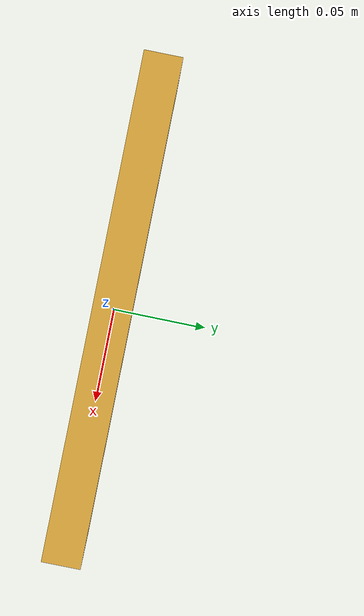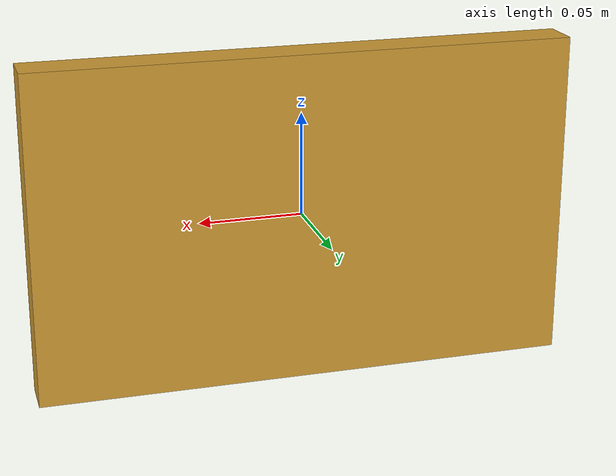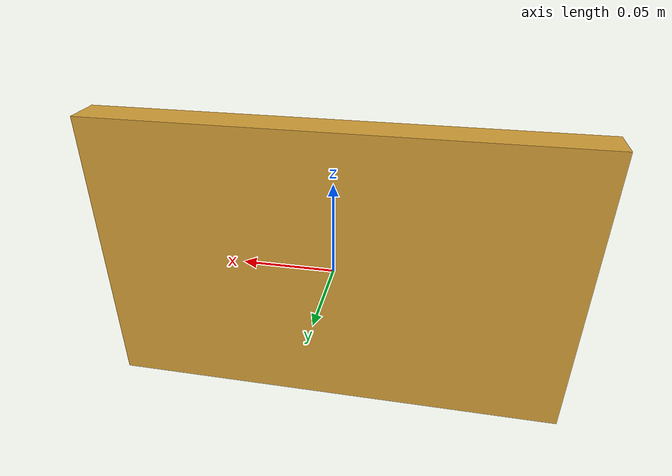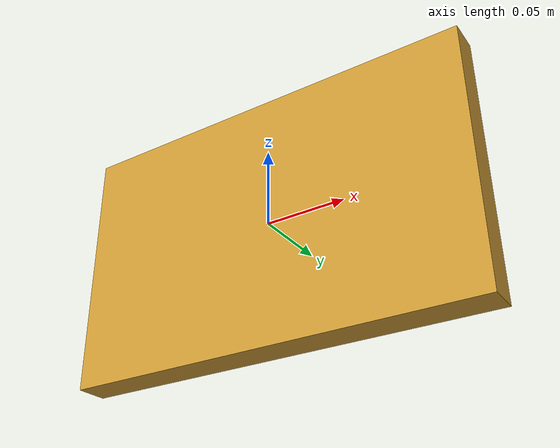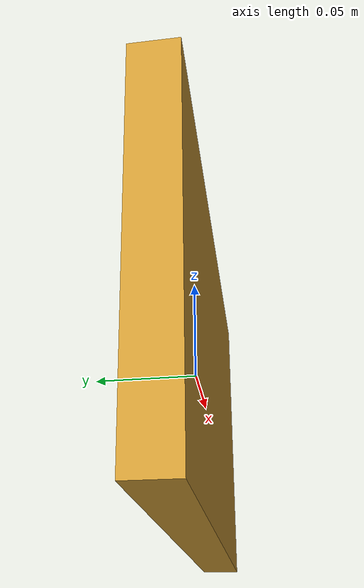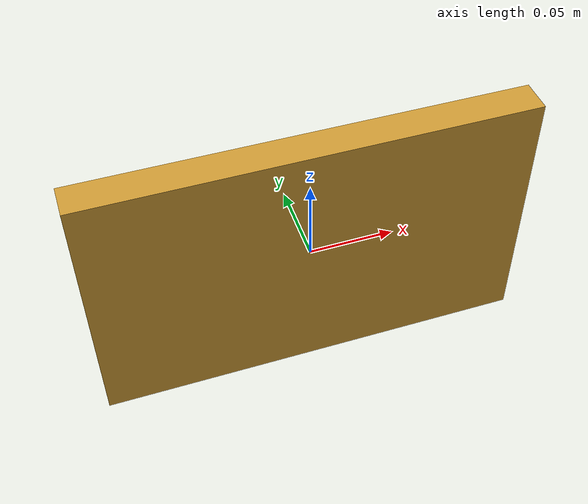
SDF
<?xml version="1.0" ?>
<sdf version="1.6">
  <model name="panel_front_low">
    <static>true</static>
    <link name="link">
      <pose>0 0 0 0 0 0</pose>
      <collision name="collision">
        <geometry><box><size>0.26 0.02 0.16</size></box></geometry>
      </collision>
      <visual name="visual">
        <geometry><box><size>0.26 0.02 0.16</size></box></geometry>
        <material>
          <ambient>0.8 0.6 0.2 1</ambient>
          <diffuse>0.8 0.6 0.2 1</diffuse>
        </material>
      </visual>
    </link>
  </model>
</sdf>
